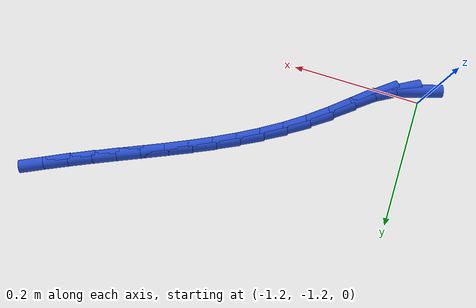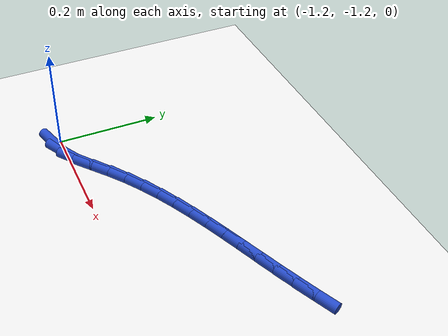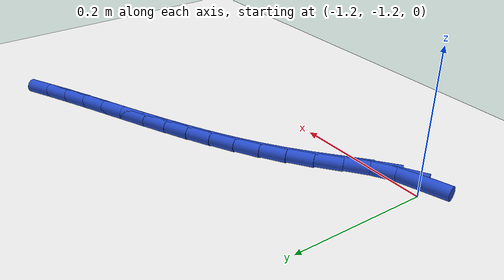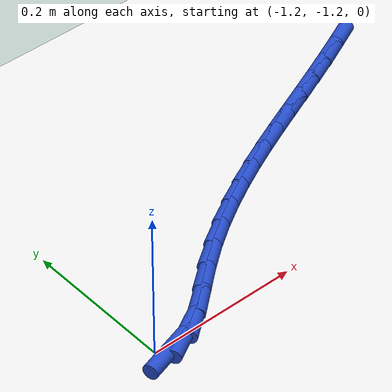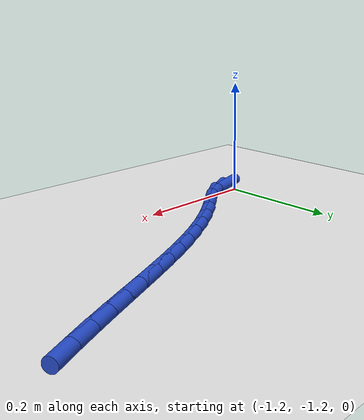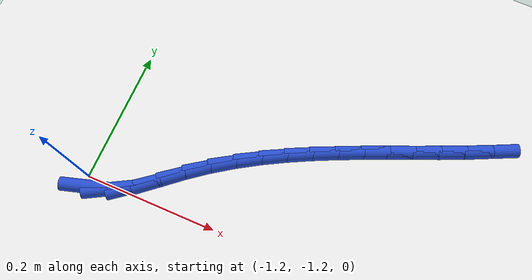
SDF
<sdf version="1.6">
 <world name="default">
  <model name="ground_plane">
   <static>1</static>
   <link name="link">
    <collision name="collision">
     <geometry><plane><normal>0 0 1</normal><size>100 100</size></plane></geometry>
     <surface><friction><ode><mu>100</mu><mu2>50</mu2></ode></friction></surface>
    </collision>
    <visual name="visual">
     <cast_shadows>0</cast_shadows>
     <geometry><plane><normal>0 0 1</normal><size>100 100</size></plane></geometry>
     <material>
      <script><uri>file://media/materials/scripts/gazebo.material</uri><name>Gazebo/WhiteGlow</name></script>
     </material>
    </visual>
   </link>
  </model>
  <model name="line">
   <link name="link_151">
    <pose>-1.1908155125592677 -1.2150552184093164 0.01 0 1.57 0.28916246863242795</pose>
    <collision name="collision">
     <geometry><cylinder><radius>0.01</radius><length>0.08</length></cylinder></geometry>
    </collision>
    <visual name="visual">
     <material>
      <script><name>Gazebo/Blue</name><uri>file://media/materials/scripts/gazebo.material</uri></script>
     </material>
     <geometry><cylinder><radius>0.01</radius><length>0.08</length></cylinder></geometry>
    </visual>
   </link>
   <link name="link_152">
    <pose>-1.1598133151311316 -1.20583203675486 0.01 0 1.57 0.5058488719588082</pose>
    <collision name="collision">
     <geometry><cylinder><radius>0.01</radius><length>0.08</length></cylinder></geometry>
    </collision>
    <visual name="visual">
     <material>
      <script><name>Gazebo/Blue</name><uri>file://media/materials/scripts/gazebo.material</uri></script>
     </material>
     <geometry><cylinder><radius>0.01</radius><length>0.08</length></cylinder></geometry>
    </visual>
   </link>
   <link name="link_153">
    <pose>-1.1298752212636052 -1.1892486868514045 0.01 0 1.57 0.6570155760300763</pose>
    <collision name="collision">
     <geometry><cylinder><radius>0.01</radius><length>0.08</length></cylinder></geometry>
    </collision>
    <visual name="visual">
     <material>
      <script><name>Gazebo/Blue</name><uri>file://media/materials/scripts/gazebo.material</uri></script>
     </material>
     <geometry><cylinder><radius>0.01</radius><length>0.08</length></cylinder></geometry>
    </visual>
   </link>
   <link name="link_154">
    <pose>-1.1006838122055023 -1.1667323637184128 0.01 0 1.57 0.6979361992753781</pose>
    <collision name="collision">
     <geometry><cylinder><radius>0.01</radius><length>0.08</length></cylinder></geometry>
    </collision>
    <visual name="visual">
     <material>
      <script><name>Gazebo/Blue</name><uri>file://media/materials/scripts/gazebo.material</uri></script>
     </material>
     <geometry><cylinder><radius>0.01</radius><length>0.08</length></cylinder></geometry>
    </visual>
   </link>
   <link name="link_155">
    <pose>-1.0714310040665413 -1.1421960872265007 0.01 0 1.57 0.6560660598775454</pose>
    <collision name="collision">
     <geometry><cylinder><radius>0.01</radius><length>0.08</length></cylinder></geometry>
    </collision>
    <visual name="visual">
     <material>
      <script><name>Gazebo/Blue</name><uri>file://media/materials/scripts/gazebo.material</uri></script>
     </material>
     <geometry><cylinder><radius>0.01</radius><length>0.08</length></cylinder></geometry>
    </visual>
   </link>
   <link name="link_156">
    <pose>-1.041411366021201 -1.1190863525817318 0.01 0 1.57 0.5996706266650038</pose>
    <collision name="collision">
     <geometry><cylinder><radius>0.01</radius><length>0.08</length></cylinder></geometry>
    </collision>
    <visual name="visual">
     <material>
      <script><name>Gazebo/Blue</name><uri>file://media/materials/scripts/gazebo.material</uri></script>
     </material>
     <geometry><cylinder><radius>0.01</radius><length>0.08</length></cylinder></geometry>
    </visual>
   </link>
   <link name="link_157">
    <pose>-1.0105359402826306 -1.0979782633245518 0.01 0 1.57 0.5494630578739803</pose>
    <collision name="collision">
     <geometry><cylinder><radius>0.01</radius><length>0.08</length></cylinder></geometry>
    </collision>
    <visual name="visual">
     <material>
      <script><name>Gazebo/Blue</name><uri>file://media/materials/scripts/gazebo.material</uri></script>
     </material>
     <geometry><cylinder><radius>0.01</radius><length>0.08</length></cylinder></geometry>
    </visual>
   </link>
   <link name="link_158">
    <pose>-0.9788968405799616 -1.0786035329211294 0.01 0 1.57 0.5061382161967396</pose>
    <collision name="collision">
     <geometry><cylinder><radius>0.01</radius><length>0.08</length></cylinder></geometry>
    </collision>
    <visual name="visual">
     <material>
      <script><name>Gazebo/Blue</name><uri>file://media/materials/scripts/gazebo.material</uri></script>
     </material>
     <geometry><cylinder><radius>0.01</radius><length>0.08</length></cylinder></geometry>
    </visual>
   </link>
   <link name="link_159">
    <pose>-0.9465862048626773 -1.0606937620247272 0.01 0 1.57 0.47014971610361267</pose>
    <collision name="collision">
     <geometry><cylinder><radius>0.01</radius><length>0.08</length></cylinder></geometry>
    </collision>
    <visual name="visual">
     <material>
      <script><name>Gazebo/Blue</name><uri>file://media/materials/scripts/gazebo.material</uri></script>
     </material>
     <geometry><cylinder><radius>0.01</radius><length>0.08</length></cylinder></geometry>
    </visual>
   </link>
   <link name="link_160">
    <pose>-0.913696171080261 -1.0439805512886087 0.01 0 1.57 0.4417562437694101</pose>
    <collision name="collision">
     <geometry><cylinder><radius>0.01</radius><length>0.08</length></cylinder></geometry>
    </collision>
    <visual name="visual">
     <material>
      <script><name>Gazebo/Blue</name><uri>file://media/materials/scripts/gazebo.material</uri></script>
     </material>
     <geometry><cylinder><radius>0.01</radius><length>0.08</length></cylinder></geometry>
    </visual>
   </link>
   <link name="link_161">
    <pose>-0.8803188771821957 -1.0281955013660362 0.01 0 1.57 0.4210722395380039</pose>
    <collision name="collision">
     <geometry><cylinder><radius>0.01</radius><length>0.08</length></cylinder></geometry>
    </collision>
    <visual name="visual">
     <material>
      <script><name>Gazebo/Blue</name><uri>file://media/materials/scripts/gazebo.material</uri></script>
     </material>
     <geometry><cylinder><radius>0.01</radius><length>0.08</length></cylinder></geometry>
    </visual>
   </link>
   <link name="link_162">
    <pose>-0.8465464611179644 -1.013070212910273 0.01 0 1.57 0.4081149380623737</pose>
    <collision name="collision">
     <geometry><cylinder><radius>0.01</radius><length>0.08</length></cylinder></geometry>
    </collision>
    <visual name="visual">
     <material>
      <script><name>Gazebo/Blue</name><uri>file://media/materials/scripts/gazebo.material</uri></script>
     </material>
     <geometry><cylinder><radius>0.01</radius><length>0.08</length></cylinder></geometry>
    </visual>
   </link>
   <link name="link_163">
    <pose>-0.8124710608370509 -0.9983362865745823 0.01 0 1.57 0.4028413324030675</pose>
    <collision name="collision">
     <geometry><cylinder><radius>0.01</radius><length>0.08</length></cylinder></geometry>
    </collision>
    <visual name="visual">
     <material>
      <script><name>Gazebo/Blue</name><uri>file://media/materials/scripts/gazebo.material</uri></script>
     </material>
     <geometry><cylinder><radius>0.01</radius><length>0.08</length></cylinder></geometry>
    </visual>
   </link>
   <link name="link_164">
    <pose>-0.7781848142889376 -0.9837253230122264 0.01 0 1.57 0.4051721625095906</pose>
    <collision name="collision">
     <geometry><cylinder><radius>0.01</radius><length>0.08</length></cylinder></geometry>
    </collision>
    <visual name="visual">
     <material>
      <script><name>Gazebo/Blue</name><uri>file://media/materials/scripts/gazebo.material</uri></script>
     </material>
     <geometry><cylinder><radius>0.01</radius><length>0.08</length></cylinder></geometry>
    </visual>
   </link>
   <link name="link_165">
    <pose>-0.7437798594231081 -0.9689689228764689 0.01 0 1.57 0.4142966033793599</pose>
    <collision name="collision">
     <geometry><cylinder><radius>0.01</radius><length>0.08</length></cylinder></geometry>
    </collision>
    <visual name="visual">
     <material>
      <script><name>Gazebo/Blue</name><uri>file://media/materials/scripts/gazebo.material</uri></script>
     </material>
     <geometry><cylinder><radius>0.01</radius><length>0.08</length></cylinder></geometry>
    </visual>
   </link>
   <link name="link_166">
    <pose>-0.7093463279353849 -0.9538268103402835 0.01 0 1.57 0.42636652759778687</pose>
    <collision name="collision">
     <geometry><cylinder><radius>0.01</radius><length>0.08</length></cylinder></geometry>
    </collision>
    <visual name="visual">
     <material>
      <script><name>Gazebo/Blue</name><uri>file://media/materials/scripts/gazebo.material</uri></script>
     </material>
     <geometry><cylinder><radius>0.01</radius><length>0.08</length></cylinder></geometry>
    </visual>
   </link>
   <link name="link_167">
    <pose>-0.674963620778083 -0.938209132368391 0.01 0 1.57 0.44014167709247715</pose>
    <collision name="collision">
     <geometry><cylinder><radius>0.01</radius><length>0.08</length></cylinder></geometry>
    </collision>
    <visual name="visual">
     <material>
      <script><name>Gazebo/Blue</name><uri>file://media/materials/scripts/gazebo.material</uri></script>
     </material>
     <geometry><cylinder><radius>0.01</radius><length>0.08</length></cylinder></geometry>
    </visual>
   </link>
  </model>
 </world>
</sdf>
